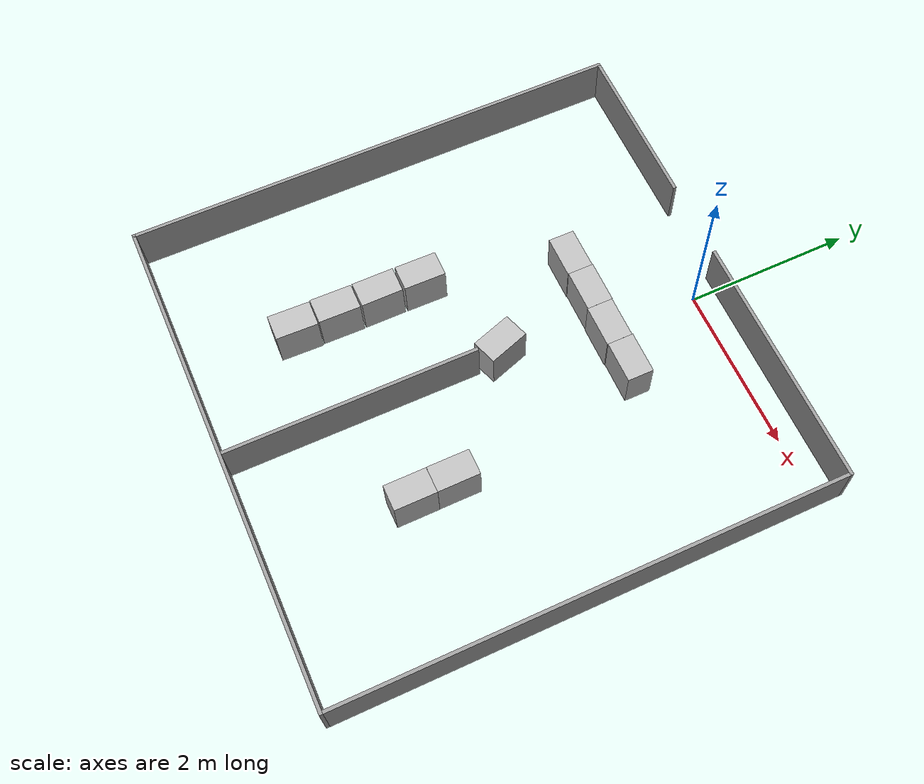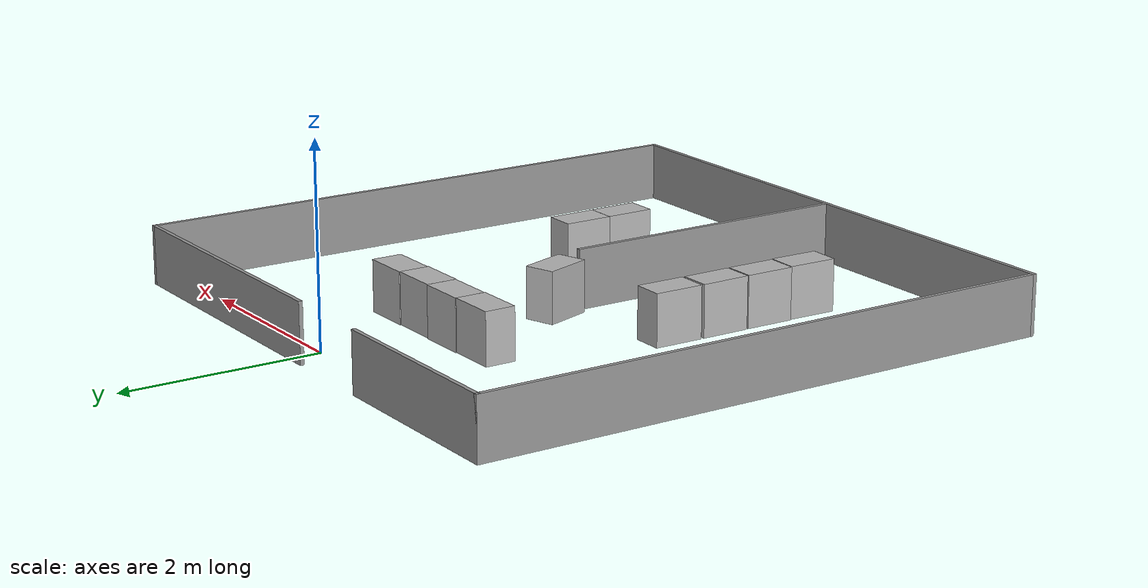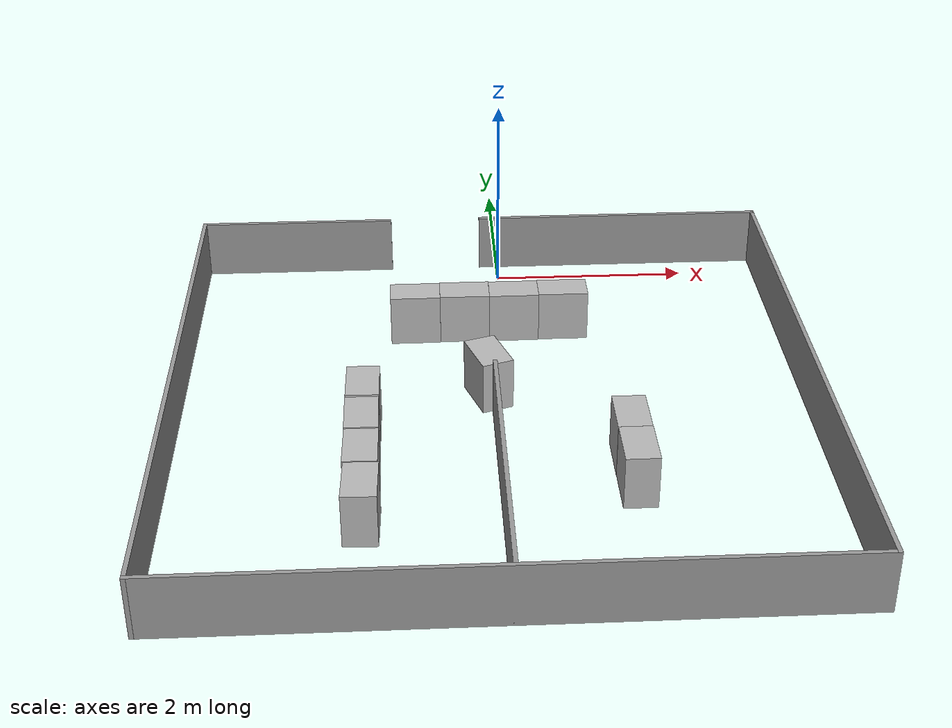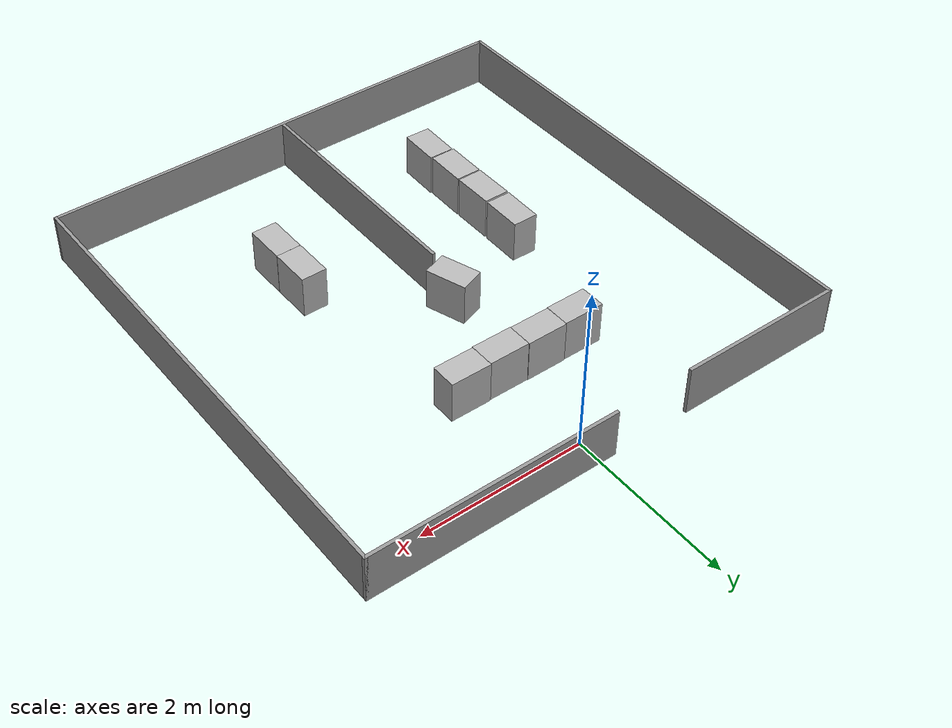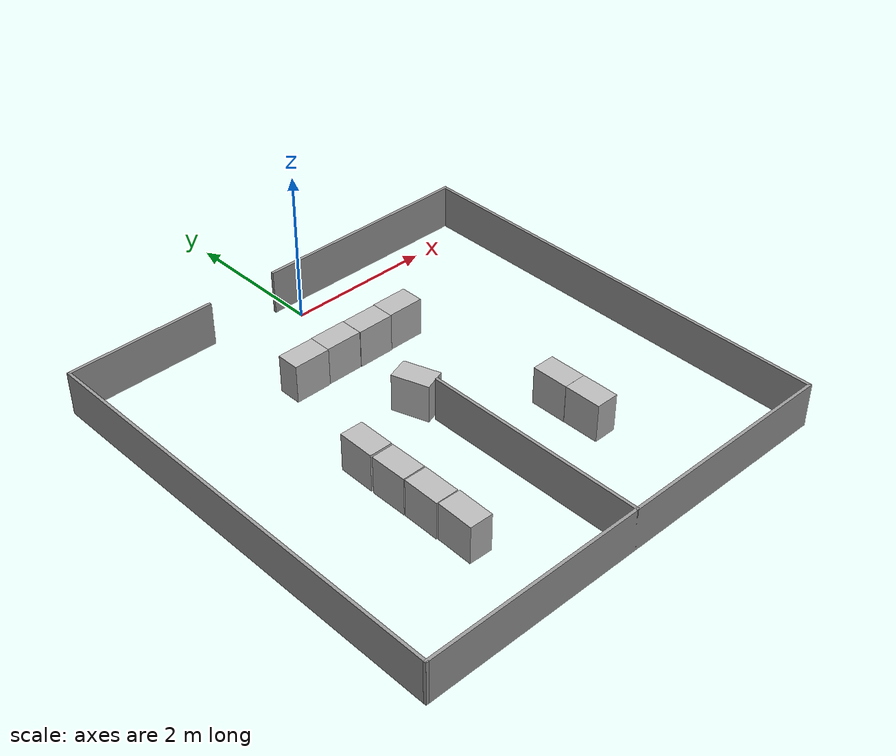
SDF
<sdf version="1.4">
 <world name="default">
  <light name="sun" type="directional">
   <pose>0 0 10 0 -0 0</pose>
   <diffuse>0.8 0.8 0.8 1</diffuse>
   <specular>0.2 0.2 0.2 1</specular>
   <attenuation>
    <range>1000</range>
    <constant>0.9</constant>
    <linear>0.01</linear>
    <quadratic>0.001</quadratic>
   </attenuation>
   <direction>0.5 0.1 -0.9</direction>
  </light>
  <model name="ground_plane">
   <static>1</static>
   <link name="link">
    <collision name="collision">
     <geometry><plane><normal>0 0 1</normal><size>100 100</size></plane></geometry>
     <surface><friction><ode><mu>100</mu><mu2>50</mu2></ode></friction></surface>
    </collision>
    <velocity_decay><linear>0</linear><angular>0</angular></velocity_decay>
   </link>
  </model>
  <physics type="ode">
   <max_step_size>0.001</max_step_size>
   <real_time_factor>1</real_time_factor>
   <real_time_update_rate>1000</real_time_update_rate>
   <gravity>0 0 -9.8</gravity>
  </physics>
  <scene><ambient>0.4 0.4 0.4 1</ambient><background>0.7 0.7 0.7 1</background><shadows>1</shadows></scene>
  <spherical_coordinates>
   <surface_model>EARTH_WGS84</surface_model>
   <latitude_deg>0</latitude_deg>
   <longitude_deg>0</longitude_deg>
   <elevation>0</elevation>
   <heading_deg>0</heading_deg>
  </spherical_coordinates>
  <model name="sks_field">
   <link name="Wall_1">
    <collision name="Wall_1_Collision">
     <geometry><box><size>2.04 0.04 0.6</size></box></geometry>
     <pose>0 0 0.3 0 -0 0</pose>
    </collision>
    <visual name="Wall_1_Visual">
     <pose>0 0 0.3 0 -0 0</pose>
     <geometry><box><size>2.04 0.04 0.6</size></box></geometry>
     <material>
      <script><uri>file://media/materials/scripts/gazebo.material</uri><name>Gazebo/Grey</name></script>
     </material>
    </visual>
    <velocity_decay><linear>0</linear><angular>0</angular></velocity_decay>
    <pose>2 -3 0 0 -0 0</pose>
   </link>
   <link name="Wall_2">
    <collision name="Wall_2_Collision">
     <geometry><box><size>6.04 0.04 0.6</size></box></geometry>
     <pose>0 0 0.3 0 -0 0</pose>
    </collision>
    <visual name="Wall_2_Visual">
     <pose>0 0 0.3 0 -0 0</pose>
     <geometry><box><size>6.04 0.04 0.6</size></box></geometry>
     <material>
      <script><uri>file://media/materials/scripts/gazebo.material</uri><name>Gazebo/Grey</name></script>
     </material>
    </visual>
    <velocity_decay><linear>0</linear><angular>0</angular></velocity_decay>
    <pose>3 0 0 0 -0 1.5708</pose>
   </link>
   <link name="Wall_3">
    <collision name="Wall_3_Collision">
     <geometry><box><size>6.04 0.04 0.6</size></box></geometry>
     <pose>0 0 0.3 0 -0 0</pose>
    </collision>
    <visual name="Wall_3_Visual">
     <pose>0 0 0.3 0 -0 0</pose>
     <geometry><box><size>6.04 0.04 0.6</size></box></geometry>
     <material>
      <script><uri>file://media/materials/scripts/gazebo.material</uri><name>Gazebo/Grey</name></script>
     </material>
    </visual>
    <velocity_decay><linear>0</linear><angular>0</angular></velocity_decay>
    <pose>0 3 0 0 -0 3.14159</pose>
   </link>
   <link name="Wall_4">
    <collision name="Wall_4_Collision">
     <geometry><box><size>6.04 0.04 0.6</size></box></geometry>
     <pose>0 0 0.3 0 -0 0</pose>
    </collision>
    <visual name="Wall_4_Visual">
     <pose>0 0 0.3 0 -0 0</pose>
     <geometry><box><size>6.04 0.04 0.6</size></box></geometry>
     <material>
      <script><uri>file://media/materials/scripts/gazebo.material</uri><name>Gazebo/Grey</name></script>
     </material>
    </visual>
    <velocity_decay><linear>0</linear><angular>0</angular></velocity_decay>
    <pose>-3 0 0 0 0 -1.5708</pose>
   </link>
   <link name="Wall_5">
    <collision name="Wall_5_Collision">
     <geometry><box><size>3.04005 0.04 0.6</size></box></geometry>
     <pose>0 0 0.3 0 -0 0</pose>
    </collision>
    <visual name="Wall_5_Visual">
     <pose>0 0 0.3 0 -0 0</pose>
     <geometry><box><size>3.04005 0.04 0.6</size></box></geometry>
     <material>
      <script><uri>file://media/materials/scripts/gazebo.material</uri><name>Gazebo/Grey</name></script>
     </material>
    </visual>
    <velocity_decay><linear>0</linear><angular>0</angular></velocity_decay>
    <pose>-1.5 -3 0 0 -0 0</pose>
   </link>
   <link name="Wall_7">
    <collision name="Wall_7_Collision">
     <geometry><box><size>3.04 0.04 0.6</size></box></geometry>
     <pose>0 0 0.3 0 -0 0</pose>
    </collision>
    <visual name="Wall_7_Visual">
     <pose>0 0 0.3 0 -0 0</pose>
     <geometry><box><size>3.04 0.04 0.6</size></box></geometry>
     <material>
      <script><uri>file://media/materials/scripts/gazebo.material</uri><name>Gazebo/Grey</name></script>
     </material>
    </visual>
    <velocity_decay><linear>0</linear><angular>0</angular></velocity_decay>
    <pose>0 1.5 0 0 0 -1.5708</pose>
   </link>
   <static>1</static>
   <pose>-0.185663 -2.70407 -0.0031 0 -0 3.13933</pose>
  </model>
  <model name="sks_obstacle">
   <link name="body">
    <pose>0 0 0.3 0 -0 0</pose>
    <collision name="collision">
     <geometry><box><size>0.5 0.31 0.52</size></box></geometry>
     <pose>0 0 0.3 0 -0 0</pose>
    </collision>
    <visual name="Visual">
     <pose>0 0 0.3 0 -0 0</pose>
     <geometry><box><size>0.5 0.31 0.52</size></box></geometry>
     <material>
      <script><uri>file://media/materials/scripts/gazebo.material</uri><name>Gazebo/CloudySky</name></script>
     </material>
    </visual>
    <velocity_decay><linear>0</linear><angular>0</angular></velocity_decay>
    <inertial>
     <inertia><ixx>1</ixx><ixy>0</ixy><ixz>0</ixz><iyy>1</iyy><iyz>0</iyz><izz>1</izz></inertia>
     <mass>1</mass>
    </inertial>
   </link>
   <pose>0.583883 -1.17633 -0.34 1e-06 4.1359e-25 -0.002339</pose>
   <static>0</static>
  </model>
  <model name="sks_obstacle_0">
   <link name="body">
    <pose>0 0 0.3 0 -0 0</pose>
    <collision name="collision">
     <geometry><box><size>0.5 0.31 0.52</size></box></geometry>
     <pose>0 0 0.3 0 -0 0</pose>
    </collision>
    <visual name="Visual">
     <pose>0 0 0.3 0 -0 0</pose>
     <geometry><box><size>0.5 0.31 0.52</size></box></geometry>
     <material>
      <script><uri>file://media/materials/scripts/gazebo.material</uri><name>Gazebo/CloudySky</name></script>
     </material>
    </visual>
    <velocity_decay><linear>0</linear><angular>0</angular></velocity_decay>
    <inertial>
     <inertia><ixx>1</ixx><ixy>0</ixy><ixz>0</ixz><iyy>1</iyy><iyz>0</iyz><izz>1</izz></inertia>
     <mass>1</mass>
    </inertial>
   </link>
   <pose>0.083437 -1.18437 -0.34 1e-06 1.03398e-25 -0.000889</pose>
   <static>0</static>
  </model>
  <model name="sks_obstacle_1">
   <link name="body">
    <pose>0 0 0.3 0 -0 0</pose>
    <collision name="collision">
     <geometry><box><size>0.5 0.31 0.52</size></box></geometry>
     <pose>0 0 0.3 0 -0 0</pose>
    </collision>
    <visual name="Visual">
     <pose>0 0 0.3 0 -0 0</pose>
     <geometry><box><size>0.5 0.31 0.52</size></box></geometry>
     <material>
      <script><uri>file://media/materials/scripts/gazebo.material</uri><name>Gazebo/CloudySky</name></script>
     </material>
    </visual>
    <velocity_decay><linear>0</linear><angular>0</angular></velocity_decay>
    <inertial>
     <inertia><ixx>1</ixx><ixy>0</ixy><ixz>0</ixz><iyy>1</iyy><iyz>0</iyz><izz>1</izz></inertia>
     <mass>1</mass>
    </inertial>
   </link>
   <pose>-0.41696 -1.17817 -0.34 -1e-06 -0 0.000377</pose>
   <static>0</static>
  </model>
  <model name="sks_obstacle_2">
   <link name="body">
    <pose>0 0 0.3 0 -0 0</pose>
    <collision name="collision">
     <geometry><box><size>0.5 0.31 0.52</size></box></geometry>
     <pose>0 0 0.3 0 -0 0</pose>
    </collision>
    <visual name="Visual">
     <pose>0 0 0.3 0 -0 0</pose>
     <geometry><box><size>0.5 0.31 0.52</size></box></geometry>
     <material>
      <script><uri>file://media/materials/scripts/gazebo.material</uri><name>Gazebo/CloudySky</name></script>
     </material>
    </visual>
    <velocity_decay><linear>0</linear><angular>0</angular></velocity_decay>
    <inertial>
     <inertia><ixx>1</ixx><ixy>0</ixy><ixz>0</ixz><iyy>1</iyy><iyz>0</iyz><izz>1</izz></inertia>
     <mass>1</mass>
    </inertial>
   </link>
   <pose>-0.917295 -1.1856 -0.34 1e-06 -5.16988e-26 0.000425</pose>
   <static>0</static>
  </model>
  <model name="sks_obstacle_3">
   <link name="body">
    <pose>0 0 0.3 0 -0 0</pose>
    <collision name="collision">
     <geometry><box><size>0.5 0.31 0.52</size></box></geometry>
     <pose>0 0 0.3 0 -0 0</pose>
    </collision>
    <visual name="Visual">
     <pose>0 0 0.3 0 -0 0</pose>
     <geometry><box><size>0.5 0.31 0.52</size></box></geometry>
     <material>
      <script><uri>file://media/materials/scripts/gazebo.material</uri><name>Gazebo/CloudySky</name></script>
     </material>
    </visual>
    <velocity_decay><linear>0</linear><angular>0</angular></velocity_decay>
    <inertial>
     <inertia><ixx>1</ixx><ixy>0</ixy><ixz>0</ixz><iyy>1</iyy><iyz>0</iyz><izz>1</izz></inertia>
     <mass>1</mass>
    </inertial>
   </link>
   <pose>1.00008 -4.00593 -0.34 -1e-06 -1.05879e-22 -1.56856</pose>
   <static>0</static>
  </model>
  <model name="sks_obstacle_4">
   <link name="body">
    <pose>0 0 0.3 0 -0 0</pose>
    <collision name="collision">
     <geometry><box><size>0.5 0.31 0.52</size></box></geometry>
     <pose>0 0 0.3 0 -0 0</pose>
    </collision>
    <visual name="Visual">
     <pose>0 0 0.3 0 -0 0</pose>
     <geometry><box><size>0.5 0.31 0.52</size></box></geometry>
     <material>
      <script><uri>file://media/materials/scripts/gazebo.material</uri><name>Gazebo/CloudySky</name></script>
     </material>
    </visual>
    <velocity_decay><linear>0</linear><angular>0</angular></velocity_decay>
    <inertial>
     <inertia><ixx>1</ixx><ixy>0</ixy><ixz>0</ixz><iyy>1</iyy><iyz>0</iyz><izz>1</izz></inertia>
     <mass>1</mass>
    </inertial>
   </link>
   <pose>0.997446 -3.50561 -0.34 1e-06 -0 -1.57015</pose>
   <static>0</static>
  </model>
  <model name="sks_obstacle_5">
   <link name="body">
    <pose>0 0 0.3 0 -0 0</pose>
    <collision name="collision">
     <geometry><box><size>0.5 0.31 0.52</size></box></geometry>
     <pose>0 0 0.3 0 -0 0</pose>
    </collision>
    <visual name="Visual">
     <pose>0 0 0.3 0 -0 0</pose>
     <geometry><box><size>0.5 0.31 0.52</size></box></geometry>
     <material>
      <script><uri>file://media/materials/scripts/gazebo.material</uri><name>Gazebo/CloudySky</name></script>
     </material>
    </visual>
    <velocity_decay><linear>0</linear><angular>0</angular></velocity_decay>
    <inertial>
     <inertia><ixx>1</ixx><ixy>0</ixy><ixz>0</ixz><iyy>1</iyy><iyz>0</iyz><izz>1</izz></inertia>
     <mass>1</mass>
    </inertial>
   </link>
   <pose>-1.42346 -4.41685 -0.34 -1e-06 -0 -1.59887</pose>
   <static>0</static>
  </model>
  <model name="sks_obstacle_6">
   <link name="body">
    <pose>0 0 0.3 0 -0 0</pose>
    <collision name="collision">
     <geometry><box><size>0.5 0.31 0.52</size></box></geometry>
     <pose>0 0 0.3 0 -0 0</pose>
    </collision>
    <visual name="Visual">
     <pose>0 0 0.3 0 -0 0</pose>
     <geometry><box><size>0.5 0.31 0.52</size></box></geometry>
     <material>
      <script><uri>file://media/materials/scripts/gazebo.material</uri><name>Gazebo/CloudySky</name></script>
     </material>
    </visual>
    <velocity_decay><linear>0</linear><angular>0</angular></velocity_decay>
    <inertial>
     <inertia><ixx>1</ixx><ixy>0</ixy><ixz>0</ixz><iyy>1</iyy><iyz>0</iyz><izz>1</izz></inertia>
     <mass>1</mass>
    </inertial>
   </link>
   <pose>-1.42576 -3.90489 -0.34 -1e-06 -0 -1.58556</pose>
   <static>0</static>
  </model>
  <model name="sks_obstacle_7">
   <link name="body">
    <pose>0 0 0.3 0 -0 0</pose>
    <collision name="collision">
     <geometry><box><size>0.5 0.31 0.52</size></box></geometry>
     <pose>0 0 0.3 0 -0 0</pose>
    </collision>
    <visual name="Visual">
     <pose>0 0 0.3 0 -0 0</pose>
     <geometry><box><size>0.5 0.31 0.52</size></box></geometry>
     <material>
      <script><uri>file://media/materials/scripts/gazebo.material</uri><name>Gazebo/CloudySky</name></script>
     </material>
    </visual>
    <velocity_decay><linear>0</linear><angular>0</angular></velocity_decay>
    <inertial>
     <inertia><ixx>1</ixx><ixy>0</ixy><ixz>0</ixz><iyy>1</iyy><iyz>0</iyz><izz>1</izz></inertia>
     <mass>1</mass>
    </inertial>
   </link>
   <pose>-1.42548 -3.3884 -0.34 -1e-06 -0 -1.56845</pose>
   <static>0</static>
  </model>
  <model name="sks_obstacle_8">
   <link name="body">
    <pose>0 0 0.3 0 -0 0</pose>
    <collision name="collision">
     <geometry><box><size>0.5 0.31 0.52</size></box></geometry>
     <pose>0 0 0.3 0 -0 0</pose>
    </collision>
    <visual name="Visual">
     <pose>0 0 0.3 0 -0 0</pose>
     <geometry><box><size>0.5 0.31 0.52</size></box></geometry>
     <material>
      <script><uri>file://media/materials/scripts/gazebo.material</uri><name>Gazebo/CloudySky</name></script>
     </material>
    </visual>
    <velocity_decay><linear>0</linear><angular>0</angular></velocity_decay>
    <inertial>
     <inertia><ixx>1</ixx><ixy>0</ixy><ixz>0</ixz><iyy>1</iyy><iyz>0</iyz><izz>1</izz></inertia>
     <mass>1</mass>
    </inertial>
   </link>
   <pose>-1.42195 -2.86062 -0.34 1e-06 -0 -1.58173</pose>
   <static>0</static>
  </model>
  <model name="sks_obstacle_9">
   <link name="body">
    <pose>0 0 0.3 0 -0 0</pose>
    <collision name="collision">
     <geometry><box><size>0.5 0.31 0.52</size></box></geometry>
     <pose>0 0 0.3 0 -0 0</pose>
    </collision>
    <visual name="Visual">
     <pose>0 0 0.3 0 -0 0</pose>
     <geometry><box><size>0.5 0.31 0.52</size></box></geometry>
     <material>
      <script><uri>file://media/materials/scripts/gazebo.material</uri><name>Gazebo/CloudySky</name></script>
     </material>
    </visual>
    <velocity_decay><linear>0</linear><angular>0</angular></velocity_decay>
    <inertial>
     <inertia><ixx>1</ixx><ixy>0</ixy><ixz>0</ixz><iyy>1</iyy><iyz>0</iyz><izz>1</izz></inertia>
     <mass>1</mass>
    </inertial>
   </link>
   <pose>-0.232465 -2.39372 -0.34 -1e-06 -0 -1.24209</pose>
   <static>0</static>
  </model>
 </world>
</sdf>
